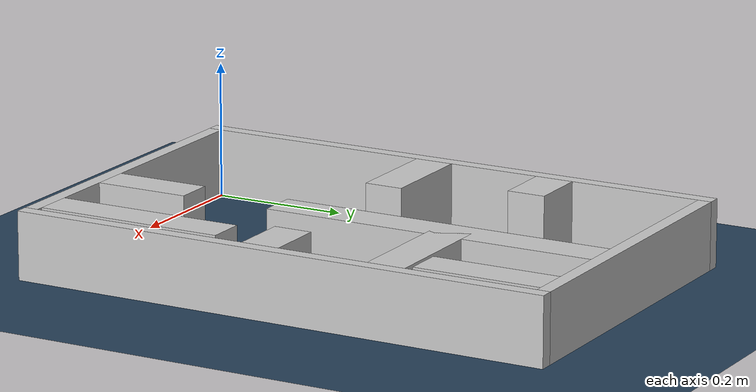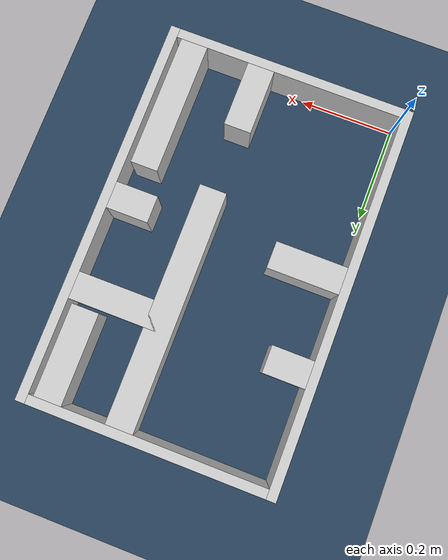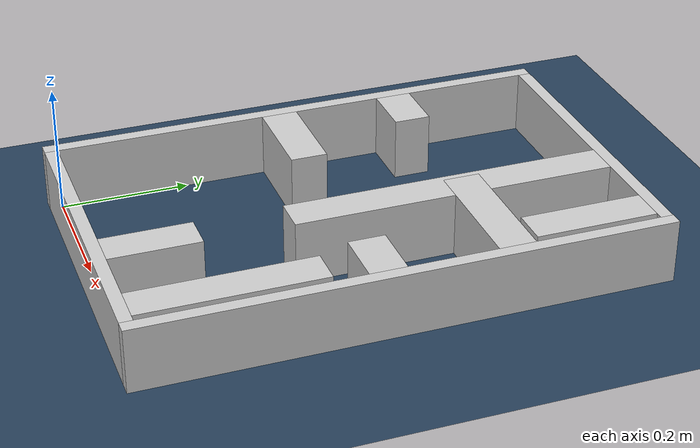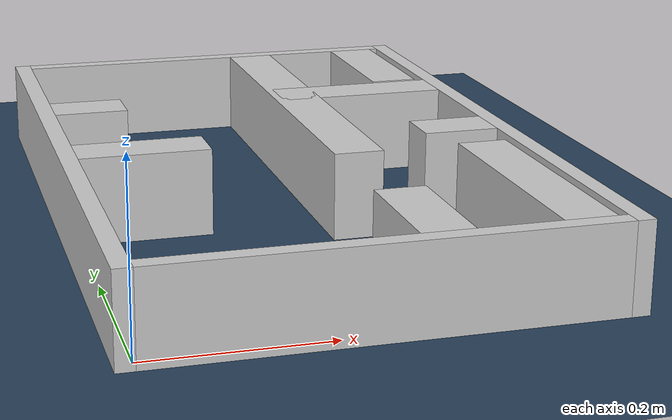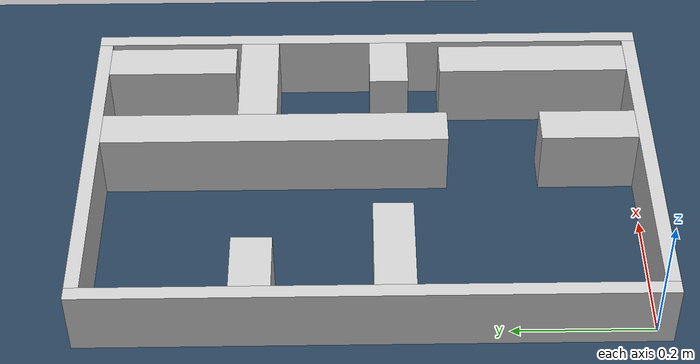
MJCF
<?xml version="1.0" ?>
<mujoco model="generated_real_template">
  <compiler angle="degree"/>
  <option timestep="0.002" integrator="implicitfast" iterations="100" cone="elliptic"/>
  <default>
    <geom density="1"/>
  </default>
  <asset>
    <texture builtin="gradient" height="3072" rgb1="0.3 0.5 0.7" rgb2="0 0 0" type="skybox" width="512"/>
    <texture builtin="checker" height="300" mark="edge" markrgb="0.8 0.8 0.8" name="groundplane" rgb1="0.2 0.3 0.4" rgb2="0.1 0.2 0.3" type="2d" width="300"/>
    <material name="groundplane" reflectance="0.2" texrepeat="5 5" texture="groundplane" texuniform="true"/>
  </asset>
  <worldbody>
    <light dir="0 0 -1" directional="true" pos="0 0 1.5"/>
    <geom name="floor" type="plane" condim="4" friction="0.5 0.005 0.001" material="groundplane" size="0 0 0.05"/>
    <body name="walls">
      <geom name="wall_boundary_left" type="box" condim="4" friction="1.0 0.005 0.0001" rgba="0.8 0.8 0.8 1" pos="-0.010000 0.387500 0.050000" euler="0 0 0.000000" size="0.010000 0.407500 0.050000"/>
      <geom name="wall_boundary_right" type="box" condim="4" friction="1.0 0.005 0.0001" rgba="0.8 0.8 0.8 1" pos="0.500000 0.387500 0.050000" euler="0 0 0.000000" size="0.010000 0.407500 0.050000"/>
      <geom name="wall_boundary_bottom" type="box" condim="4" friction="1.0 0.005 0.0001" rgba="0.8 0.8 0.8 1" pos="0.245000 -0.010000 0.050000" euler="0 0 0.000000" size="0.245000 0.010000 0.050000"/>
      <geom name="wall_boundary_top" type="box" condim="4" friction="1.0 0.005 0.0001" rgba="0.8 0.8 0.8 1" pos="0.245000 0.785000 0.050000" euler="0 0 0.000000" size="0.245000 0.010000 0.050000"/>
      <geom name="wall_inner_1_1" type="box" condim="4" friction="1.0 0.005 0.0001" rgba="0.8 0.8 0.8 1" pos="0.303961 0.069836 0.050000" euler="0 0 90.000000" size="0.069836 0.028500 0.050000"/>
      <geom name="wall_inner_1_2" type="box" condim="4" friction="1.0 0.005 0.0001" rgba="0.8 0.8 0.8 1" pos="0.303961 0.524629 0.050000" euler="0 0 90.000000" size="0.250371 0.028500 0.050000"/>
      <geom name="wall_inner_2_1" type="box" condim="4" friction="1.0 0.005 0.0001" rgba="0.8 0.8 0.8 1" pos="0.043821 0.550686 0.050000" euler="0 0 0.000000" size="0.043821 0.028500 0.050000"/>
      <geom name="wall_inner_2_2" type="box" condim="4" friction="1.0 0.005 0.0001" rgba="0.8 0.8 0.8 1" pos="0.387366 0.550686 0.050000" euler="0 0 0.000000" size="0.102634 0.028500 0.050000"/>
      <geom name="wall_inner_3_1" type="box" condim="4" friction="1.0 0.005 0.0001" rgba="0.8 0.8 0.8 1" pos="0.451032 0.140348 0.050000" euler="0 0 90.000000" size="0.140348 0.028500 0.050000"/>
      <geom name="wall_inner_3_2" type="box" condim="4" friction="1.0 0.005 0.0001" rgba="0.8 0.8 0.8 1" pos="0.451032 0.680263 0.050000" euler="0 0 90.000000" size="0.094737 0.028500 0.050000"/>
      <geom name="wall_inner_4_1" type="box" condim="4" friction="1.0 0.005 0.0001" rgba="0.8 0.8 0.8 1" pos="0.074847 0.357040 0.050000" euler="0 0 0.000000" size="0.074847 0.028500 0.050000"/>
      <geom name="wall_inner_4_2" type="box" condim="4" friction="1.0 0.005 0.0001" rgba="0.8 0.8 0.8 1" pos="0.445878 0.357040 0.050000" euler="0 0 0.000000" size="0.044122 0.028500 0.050000"/>
    </body>
  </worldbody>
</mujoco>
